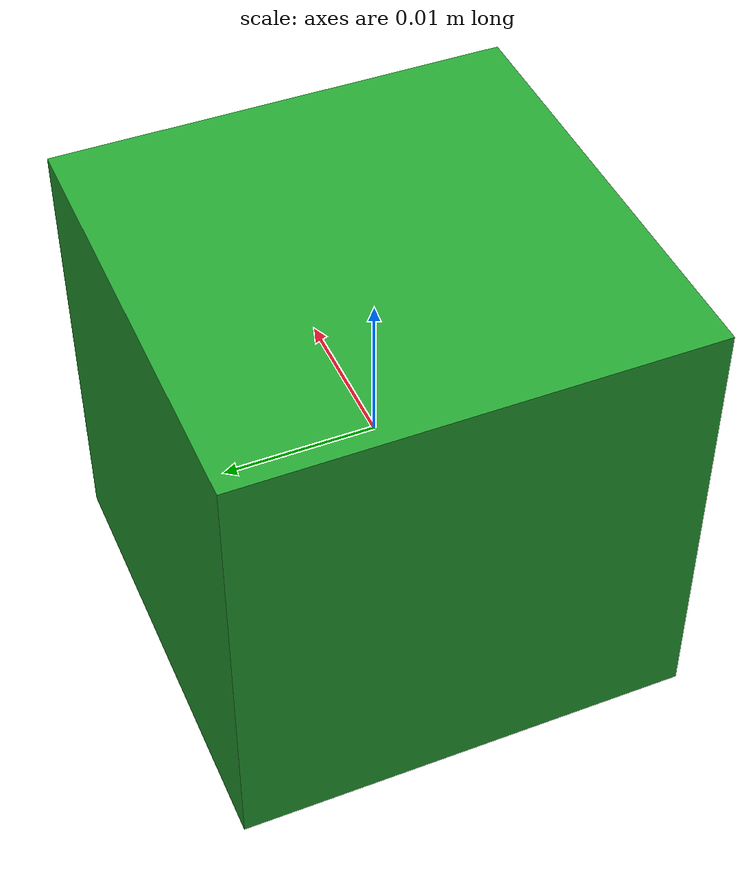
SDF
<?xml version='1.0'?>
<sdf version='1.6'>
  <model name='block_green'>
    <link name='link'>
      <pose>0.0 0.0 0.0 0 -0 0</pose>
      <inertial>
        <!--NOTE:
        Uses limestone density (i.e 2000 kg/m^3) to calculate the mass
        see https://en.wikipedia.org/wiki/Limestone
        -->
        <mass>0.1024</mass>
        <inertia>
          <ixx>4.369e-5</ixx>
          <ixy>0</ixy>
          <ixz>0</ixz>
          <iyy>4.028e-5</iyy>
          <iyz>0</iyz>
          <izz>1.407e-5</izz>
        </inertia>
        <pose>0 0 0 0 -0 0</pose>
      </inertial>
      <self_collide>0</self_collide>
      <kinematic>0</kinematic>
      <enable_wind>0</enable_wind>
      <pose>0 0 0 0 -0 0</pose>
      <visual name='visual'>
        <geometry>
          <box>
            <size>0.03 0.03 0.03</size>
          </box>
        </geometry>
        <material>
          <script>
            <uri>/home/husen/SE - 4 - 1/Robotics/robotic_arm/src/robotic_arm/models/gazebo.material</uri>
            <name>Gazebo/Green</name>
          </script>
          <shader type='pixel' />
        </material>
        <pose>0 0 0 0 -0 0</pose>
        <transparency>0</transparency>
        <cast_shadows>1</cast_shadows>
      </visual>
      <collision name='collision'>
        <laser_retro>0</laser_retro>
        <max_contacts>10</max_contacts>
        <pose>0 0 0 0 -0 0</pose>
        <geometry>
          <box>
            <size>0.03 0.03 0.03</size>
          </box>
        </geometry>
        <surface>
          <!--NOTE:
          Uses dynamic friction of brick on a wood surface
          see https://www.engineeringtoolbox.com/friction-coefficients-d_778.html
          -->
          <friction>
            <ode>
              <mu>1.0</mu>
              <mu2>1.0</mu2>
              <fdir1>0 0 0</fdir1>
              <slip1>0</slip1>
              <slip2>0</slip2>
            </ode>
            <torsional>
              <coefficient>1</coefficient>
              <patch_radius>0</patch_radius>
              <surface_radius>0</surface_radius>
              <use_patch_radius>1</use_patch_radius>
              <ode>
                <slip>0</slip>
              </ode>
            </torsional>
          </friction>
          <bounce>
            <restitution_coefficient>0</restitution_coefficient>
            <threshold>1e+06</threshold>
          </bounce>
          <contact>
            <collide_without_contact>0</collide_without_contact>
            <collide_without_contact_bitmask>1</collide_without_contact_bitmask>
            <collide_bitmask>1</collide_bitmask>
            <ode>
              <soft_cfm>0</soft_cfm>
              <soft_erp>0.2</soft_erp>
              <kp>1e+13</kp>
              <kd>5</kd>
              <max_vel>0</max_vel>
              <min_depth>0.003</min_depth>
            </ode>
            <bullet>
              <split_impulse>1</split_impulse>
              <split_impulse_penetration_threshold>-0.01</split_impulse_penetration_threshold>
              <soft_cfm>0</soft_cfm>
              <soft_erp>0.2</soft_erp>
              <kp>1e+13</kp>
              <kd>1</kd>
            </bullet>
          </contact>
        </surface>
      </collision>
    </link>
    <static>0</static>
    <allow_auto_disable>1</allow_auto_disable>
  </model>
</sdf>
